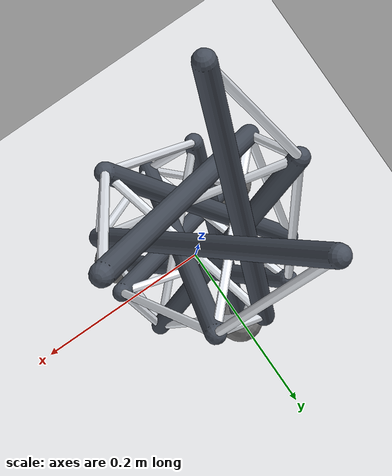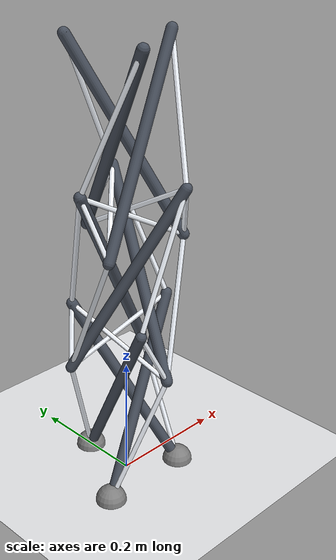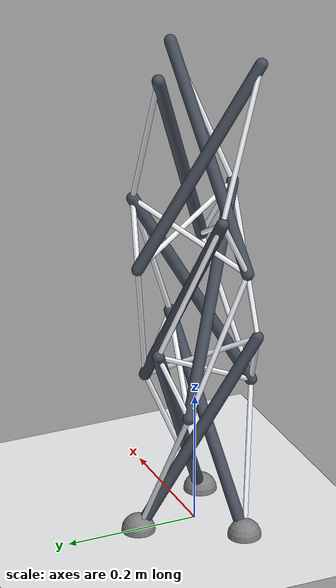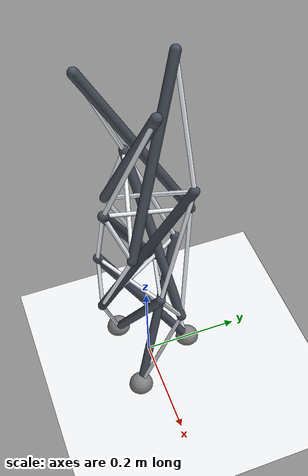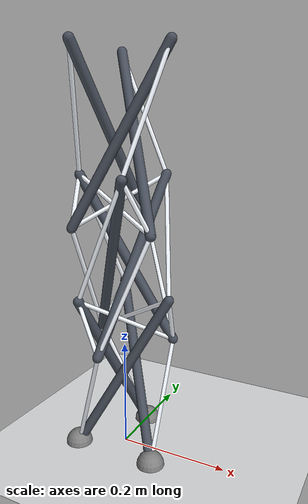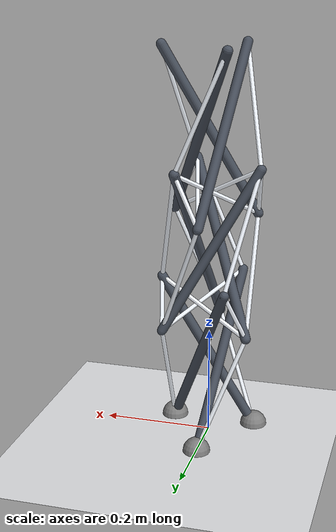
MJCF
<mujoco model="rigid_cage_walker">
  <compiler angle="radian" autolimits="true"/>
  <option timestep="0.0002" integrator="implicitfast" solver="Newton"
          iterations="50"/>
  <visual><global offwidth="1600" offheight="1200"/></visual>
  <asset>
    <texture name="grid" type="2d" builtin="checker" rgb1="0.88 0.89 0.90"
             rgb2="0.96 0.96 0.97" width="512" height="512"/>
    <material name="grid" texture="grid" texrepeat="10 10"/>
  </asset>
  <worldbody>
    <light pos="1.2 -1.2 2.6" dir="-0.4 0.4 -1" directional="true"/>
    <geom name="floor" type="plane" size="6 6 0.1" material="grid"
          contype="1" conaffinity="1" friction="1.2 0.01 0.001"/>

    <body name="seg0" pos="-0.00000 -0.00000 0.15000">
      <freejoint/>
            <geom type="capsule" size="0.009" mass="0.001" contype="0" conaffinity="0" rgba="0.28 0.31 0.36 1" fromto="0.00000 0.09000 -0.15000 -0.04527 -0.07778 0.15000"/>
      <geom type="capsule" size="0.009" mass="0.001" contype="0" conaffinity="0" rgba="0.28 0.31 0.36 1" fromto="-0.07794 -0.04500 -0.15000 0.09000 -0.00031 0.15000"/>
      <geom type="capsule" size="0.009" mass="0.001" contype="0" conaffinity="0" rgba="0.28 0.31 0.36 1" fromto="0.07794 -0.04500 -0.15000 -0.04473 0.07810 0.15000"/>
      <inertial pos="0 0 0" mass="0.8" diaginertia="0.009240 0.009240 0.006480"/>
      <geom name="pad_seg0_0" type="sphere" size="0.025" mass="0.04" contype="1" conaffinity="1" friction="1.2 0.01 0.001" pos="0.00000 0.09000 -0.15000"/>
      <geom name="pad_seg0_1" type="sphere" size="0.025" mass="0.04" contype="1" conaffinity="1" friction="1.2 0.01 0.001" pos="-0.07794 -0.04500 -0.15000"/>
      <geom name="pad_seg0_2" type="sphere" size="0.025" mass="0.04" contype="1" conaffinity="1" friction="1.2 0.01 0.001" pos="0.07794 -0.04500 -0.15000"/>
      <site name="seg0_b0" pos="0.00000 0.09000 -0.15000" size="0.006"/>
      <site name="seg0_b1" pos="-0.07794 -0.04500 -0.15000" size="0.006"/>
      <site name="seg0_b2" pos="0.07794 -0.04500 -0.15000" size="0.006"/>
      <site name="seg0_t0" pos="-0.04473 0.07810 0.15000" size="0.006"/>
      <site name="seg0_t1" pos="-0.04527 -0.07778 0.15000" size="0.006"/>
      <site name="seg0_t2" pos="0.09000 -0.00031 0.15000" size="0.006"/>
    </body>
    <body name="seg1" pos="0.00000 -0.00000 0.36000">
      <freejoint/>
            <geom type="capsule" size="0.009" mass="0.001" contype="0" conaffinity="0" rgba="0.28 0.31 0.36 1" fromto="-0.07794 0.04500 -0.15000 0.04473 -0.07810 0.15000"/>
      <geom type="capsule" size="0.009" mass="0.001" contype="0" conaffinity="0" rgba="0.28 0.31 0.36 1" fromto="-0.00000 -0.09000 -0.15000 0.04527 0.07778 0.15000"/>
      <geom type="capsule" size="0.009" mass="0.001" contype="0" conaffinity="0" rgba="0.28 0.31 0.36 1" fromto="0.07794 0.04500 -0.15000 -0.09000 0.00031 0.15000"/>
      <inertial pos="0 0 0" mass="0.8" diaginertia="0.009240 0.009240 0.006480"/>
      <site name="seg1_b0" pos="-0.07794 0.04500 -0.15000" size="0.006"/>
      <site name="seg1_b1" pos="-0.00000 -0.09000 -0.15000" size="0.006"/>
      <site name="seg1_b2" pos="0.07794 0.04500 -0.15000" size="0.006"/>
      <site name="seg1_t0" pos="-0.09000 0.00031 0.15000" size="0.006"/>
      <site name="seg1_t1" pos="0.04473 -0.07810 0.15000" size="0.006"/>
      <site name="seg1_t2" pos="0.04527 0.07778 0.15000" size="0.006"/>
    </body>
    <body name="seg2" pos="0.00000 0.00000 0.57000">
      <freejoint/>
            <geom type="capsule" size="0.009" mass="0.001" contype="0" conaffinity="0" rgba="0.28 0.31 0.36 1" fromto="-0.07794 -0.04500 -0.15000 0.09000 -0.00031 0.15000"/>
      <geom type="capsule" size="0.009" mass="0.001" contype="0" conaffinity="0" rgba="0.28 0.31 0.36 1" fromto="0.07794 -0.04500 -0.15000 -0.04473 0.07810 0.15000"/>
      <geom type="capsule" size="0.009" mass="0.001" contype="0" conaffinity="0" rgba="0.28 0.31 0.36 1" fromto="0.00000 0.09000 -0.15000 -0.04527 -0.07778 0.15000"/>
      <inertial pos="0 0 0" mass="10.0" diaginertia="0.115500 0.115500 0.081000"/>
      <site name="seg2_b0" pos="-0.07794 -0.04500 -0.15000" size="0.006"/>
      <site name="seg2_b1" pos="0.07794 -0.04500 -0.15000" size="0.006"/>
      <site name="seg2_b2" pos="0.00000 0.09000 -0.15000" size="0.006"/>
      <site name="seg2_t0" pos="-0.04527 -0.07778 0.15000" size="0.006"/>
      <site name="seg2_t1" pos="0.09000 -0.00031 0.15000" size="0.006"/>
      <site name="seg2_t2" pos="-0.04473 0.07810 0.15000" size="0.006"/>
    </body>
  </worldbody>
  <tendon>
    <spatial name="t0" width="0.004" stiffness="40000.0" damping="4.00" springlength="0 0.100941" rgba="0.95 0.97 1 1">
      <site site="seg0_t0"/>
      <site site="seg1_b0"/>
    </spatial>
    <spatial name="t1" width="0.004" stiffness="40000.0" damping="4.00" springlength="0 0.228475" rgba="0.95 0.97 1 1">
      <site site="seg0_t0"/>
      <site site="seg1_t0"/>
    </spatial>
    <spatial name="t2" width="0.004" stiffness="40000.0" damping="4.00" springlength="0 0.194980" rgba="0.95 0.97 1 1">
      <site site="seg0_t0"/>
      <site site="seg1_b1"/>
    </spatial>
    <spatial name="t3" width="0.004" stiffness="40000.0" damping="4.00" springlength="0 0.228472" rgba="0.95 0.97 1 1">
      <site site="seg0_b0"/>
      <site site="seg1_b0"/>
    </spatial>
    <spatial name="t4" width="0.004" stiffness="40000.0" damping="4.00" springlength="0 0.100941" rgba="0.95 0.97 1 1">
      <site site="seg0_t1"/>
      <site site="seg1_b1"/>
    </spatial>
    <spatial name="t5" width="0.004" stiffness="40000.0" damping="4.00" springlength="0 0.228473" rgba="0.95 0.97 1 1">
      <site site="seg0_t1"/>
      <site site="seg1_t1"/>
    </spatial>
    <spatial name="t6" width="0.004" stiffness="40000.0" damping="4.00" springlength="0 0.194973" rgba="0.95 0.97 1 1">
      <site site="seg0_t1"/>
      <site site="seg1_b2"/>
    </spatial>
    <spatial name="t7" width="0.004" stiffness="40000.0" damping="4.00" springlength="0 0.228472" rgba="0.95 0.97 1 1">
      <site site="seg0_b1"/>
      <site site="seg1_b1"/>
    </spatial>
    <spatial name="t8" width="0.004" stiffness="40000.0" damping="4.00" springlength="0 0.100940" rgba="0.95 0.97 1 1">
      <site site="seg0_t2"/>
      <site site="seg1_b2"/>
    </spatial>
    <spatial name="t9" width="0.004" stiffness="40000.0" damping="4.00" springlength="0 0.228471" rgba="0.95 0.97 1 1">
      <site site="seg0_t2"/>
      <site site="seg1_t2"/>
    </spatial>
    <spatial name="t10" width="0.004" stiffness="40000.0" damping="4.00" springlength="0 0.194976" rgba="0.95 0.97 1 1">
      <site site="seg0_t2"/>
      <site site="seg1_b0"/>
    </spatial>
    <spatial name="t11" width="0.004" stiffness="40000.0" damping="4.00" springlength="0 0.228473" rgba="0.95 0.97 1 1">
      <site site="seg0_b2"/>
      <site site="seg1_b2"/>
    </spatial>
    <spatial name="t12" width="0.004" stiffness="40000.0" damping="4.00" springlength="0 0.101481" rgba="0.95 0.97 1 1">
      <site site="seg1_t0"/>
      <site site="seg2_b0"/>
    </spatial>
    <spatial name="t13" width="0.004" stiffness="40000.0" damping="4.00" springlength="0 0.228471" rgba="0.95 0.97 1 1">
      <site site="seg1_t0"/>
      <site site="seg2_t0"/>
    </spatial>
    <spatial name="t14" width="0.004" stiffness="40000.0" damping="4.00" springlength="0 0.194074" rgba="0.95 0.97 1 1">
      <site site="seg1_t0"/>
      <site site="seg2_b1"/>
    </spatial>
    <spatial name="t15" width="0.004" stiffness="40000.0" damping="4.00" springlength="0 0.228473" rgba="0.95 0.97 1 1">
      <site site="seg1_b0"/>
      <site site="seg2_b0"/>
    </spatial>
    <spatial name="t16" width="0.004" stiffness="40000.0" damping="4.00" springlength="0 0.101482" rgba="0.95 0.97 1 1">
      <site site="seg1_t1"/>
      <site site="seg2_b1"/>
    </spatial>
    <spatial name="t17" width="0.004" stiffness="40000.0" damping="4.00" springlength="0 0.228475" rgba="0.95 0.97 1 1">
      <site site="seg1_t1"/>
      <site site="seg2_t1"/>
    </spatial>
    <spatial name="t18" width="0.004" stiffness="40000.0" damping="4.00" springlength="0 0.194078" rgba="0.95 0.97 1 1">
      <site site="seg1_t1"/>
      <site site="seg2_b2"/>
    </spatial>
    <spatial name="t19" width="0.004" stiffness="40000.0" damping="4.00" springlength="0 0.228472" rgba="0.95 0.97 1 1">
      <site site="seg1_b1"/>
      <site site="seg2_b1"/>
    </spatial>
    <spatial name="t20" width="0.004" stiffness="40000.0" damping="4.00" springlength="0 0.101483" rgba="0.95 0.97 1 1">
      <site site="seg1_t2"/>
      <site site="seg2_b2"/>
    </spatial>
    <spatial name="t21" width="0.004" stiffness="40000.0" damping="4.00" springlength="0 0.228473" rgba="0.95 0.97 1 1">
      <site site="seg1_t2"/>
      <site site="seg2_t2"/>
    </spatial>
    <spatial name="t22" width="0.004" stiffness="40000.0" damping="4.00" springlength="0 0.194071" rgba="0.95 0.97 1 1">
      <site site="seg1_t2"/>
      <site site="seg2_b0"/>
    </spatial>
    <spatial name="t23" width="0.004" stiffness="40000.0" damping="4.00" springlength="0 0.228472" rgba="0.95 0.97 1 1">
      <site site="seg1_b2"/>
      <site site="seg2_b2"/>
    </spatial>
  </tendon>
  <actuator>
    <motor name="a0" tendon="t0" gear="-1500.0" ctrlrange="0 1" ctrllimited="true"/>
    <motor name="a1" tendon="t1" gear="-1500.0" ctrlrange="0 1" ctrllimited="true"/>
    <motor name="a2" tendon="t2" gear="-1500.0" ctrlrange="0 1" ctrllimited="true"/>
    <motor name="a3" tendon="t3" gear="-1500.0" ctrlrange="0 1" ctrllimited="true"/>
    <motor name="a4" tendon="t4" gear="-1500.0" ctrlrange="0 1" ctrllimited="true"/>
    <motor name="a5" tendon="t5" gear="-1500.0" ctrlrange="0 1" ctrllimited="true"/>
    <motor name="a6" tendon="t6" gear="-1500.0" ctrlrange="0 1" ctrllimited="true"/>
    <motor name="a7" tendon="t7" gear="-1500.0" ctrlrange="0 1" ctrllimited="true"/>
    <motor name="a8" tendon="t8" gear="-1500.0" ctrlrange="0 1" ctrllimited="true"/>
    <motor name="a9" tendon="t9" gear="-1500.0" ctrlrange="0 1" ctrllimited="true"/>
    <motor name="a10" tendon="t10" gear="-1500.0" ctrlrange="0 1" ctrllimited="true"/>
    <motor name="a11" tendon="t11" gear="-1500.0" ctrlrange="0 1" ctrllimited="true"/>
    <motor name="a12" tendon="t12" gear="-1500.0" ctrlrange="0 1" ctrllimited="true"/>
    <motor name="a13" tendon="t13" gear="-1500.0" ctrlrange="0 1" ctrllimited="true"/>
    <motor name="a14" tendon="t14" gear="-1500.0" ctrlrange="0 1" ctrllimited="true"/>
    <motor name="a15" tendon="t15" gear="-1500.0" ctrlrange="0 1" ctrllimited="true"/>
    <motor name="a16" tendon="t16" gear="-1500.0" ctrlrange="0 1" ctrllimited="true"/>
    <motor name="a17" tendon="t17" gear="-1500.0" ctrlrange="0 1" ctrllimited="true"/>
    <motor name="a18" tendon="t18" gear="-1500.0" ctrlrange="0 1" ctrllimited="true"/>
    <motor name="a19" tendon="t19" gear="-1500.0" ctrlrange="0 1" ctrllimited="true"/>
    <motor name="a20" tendon="t20" gear="-1500.0" ctrlrange="0 1" ctrllimited="true"/>
    <motor name="a21" tendon="t21" gear="-1500.0" ctrlrange="0 1" ctrllimited="true"/>
    <motor name="a22" tendon="t22" gear="-1500.0" ctrlrange="0 1" ctrllimited="true"/>
    <motor name="a23" tendon="t23" gear="-1500.0" ctrlrange="0 1" ctrllimited="true"/>
  </actuator>
</mujoco>
